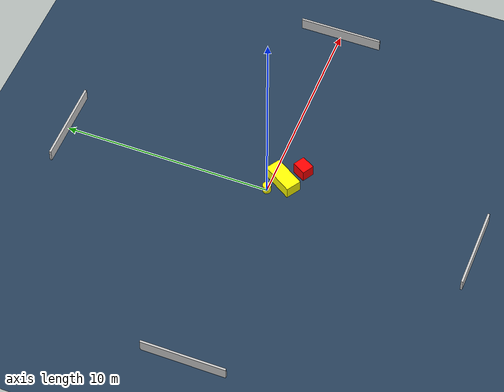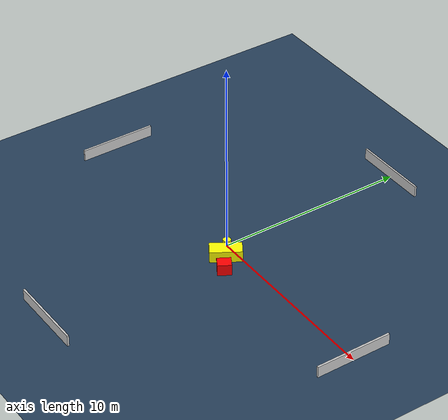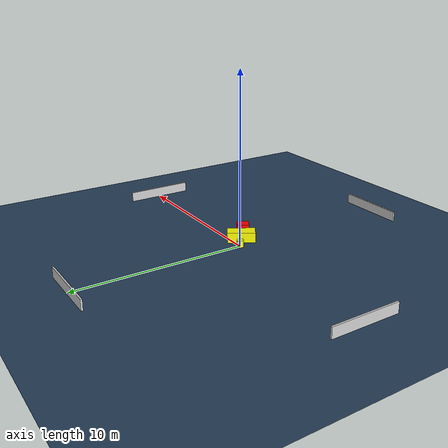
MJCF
<?xml version="1.0" ?>
<mujoco model="generated_environment">
  <option timestep="0.01" integrator="RK4" cone="elliptic"/>
  <default>
    <geom density="1"/>
  </default>
  <asset>
    <texture builtin="gradient" height="3072" name="skybox" rgb1="0.3 0.5 0.7" rgb2="0 0 0" type="skybox" width="512"/>
    <texture builtin="checker" height="300" name="groundplane" rgb1="0.2 0.3 0.4" rgb2="0.1 0.2 0.3" type="2d" width="300"/>
    <material name="groundplane" reflectance="0.2" texrepeat="5 5" texture="groundplane"/>
  </asset>
  <worldbody>
    <light dir="0 0 -1" directional="true" pos="0 0 1.5"/>
    <geom condim="3" friction="0.5 0.005 0.001" material="groundplane" name="floor" pos="0 0 0" size="0 0 0.05" type="plane"/>
    <body name="walls">
      <geom name="wall_1" condim="4" pos="-10.0 0.0 0.3" rgba="0.800000011920929 0.800000011920929 0.800000011920929 1.0" size="0.05 2.0 0.3" type="box"/>
      <geom name="wall_2" condim="4" pos="10.0 0.0 0.3" rgba="0.800000011920929 0.800000011920929 0.800000011920929 1.0" size="0.05 2.0 0.3" type="box"/>
      <geom name="wall_3" condim="4" pos="0.0 -10.0 0.3" rgba="0.800000011920929 0.800000011920929 0.800000011920929 1.0" size="2.0 0.05 0.3" type="box"/>
      <geom name="wall_4" condim="4" pos="0.0 10.0 0.3" rgba="0.800000011920929 0.800000011920929 0.800000011920929 1.0" size="2.0 0.05 0.3" type="box"/>
    </body>
    <body name="robot">
      <joint name="joint_x" type="slide" pos="0 0 0" axis="1 0 0"/>
      <joint name="joint_y" type="slide" pos="0 0 0" axis="0 1 0"/>
      <geom name="robot" type="cylinder" pos="0.0 0.0 0.2" size="0.2 0.2 0.0" mass="5.0" friction="1.0 0.005 0.0001" condim="4" rgba="1.0 1.0 0.0 1.0"/>
    </body>
    <body name="obstacle_1_movable">
      <geom name="obstacle_1_movable" condim="4" pos="0.6911997448816627 -0.535251892466896 0.3" euler="0 0 58.077373580674056" friction="0.0 0.005 0.001" rgba="1.0 1.0 0.0 1.0" size="0.7986639216122797 0.3787919250338935 0.3" type="box" mass="0.1"/>
      <joint type="free"/>
    </body>
    <body name="obstacle_2_static">
      <geom name="obstacle_2_static" condim="4" pos="1.5479477603663017 -1.2116938485411761 0.3" euler="0 0 240.10933799405612" friction="0.0 0.005 0.001" rgba="1.0 0.0 0.0 1.0" size="0.3473159762175539 0.2986892189323922 0.3" type="box"/>
    </body>
  </worldbody>
  <actuator>
    <motor name="actuator_x" joint="joint_x" gear="1" ctrlrange="-1 1"/>
    <motor name="actuator_y" joint="joint_y" gear="1" ctrlrange="-1 1"/>
  </actuator>
</mujoco>
